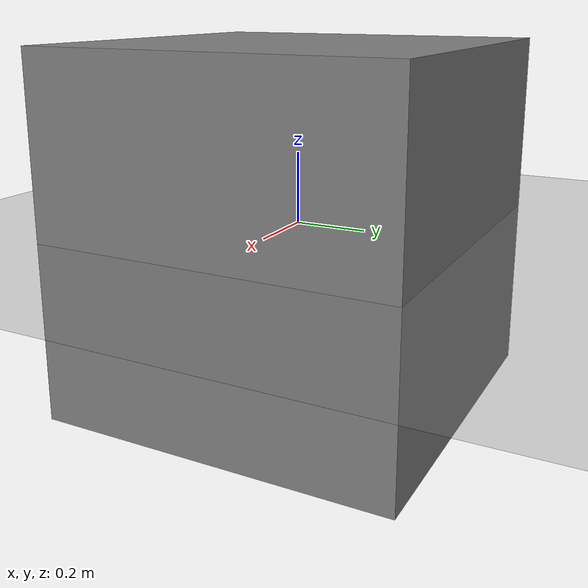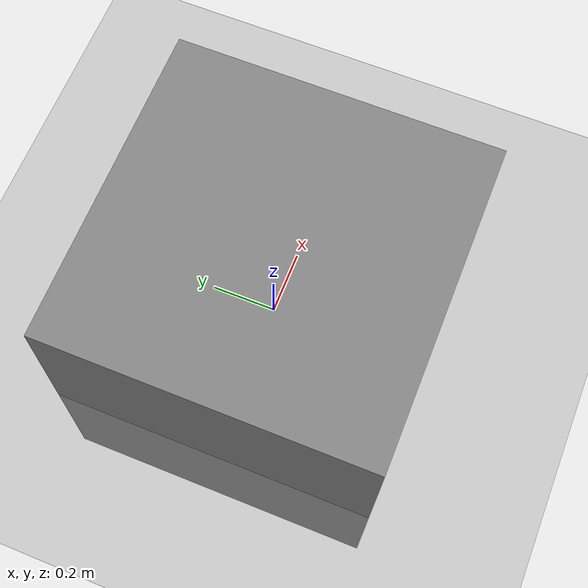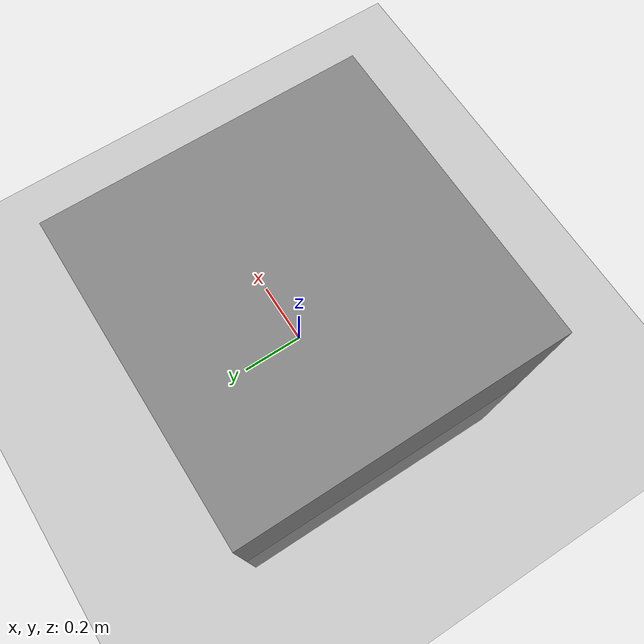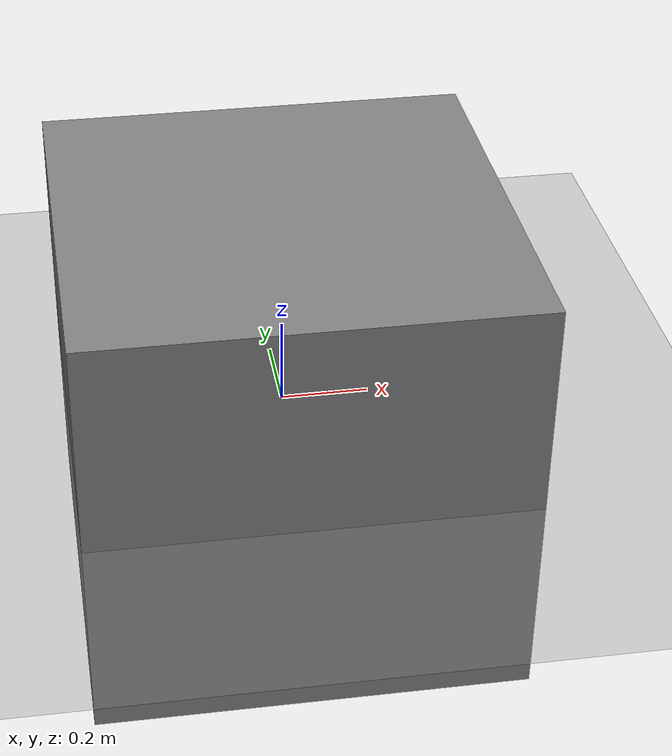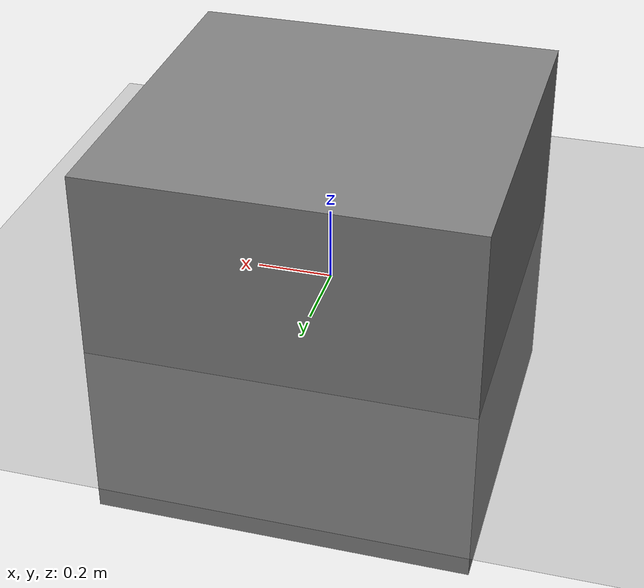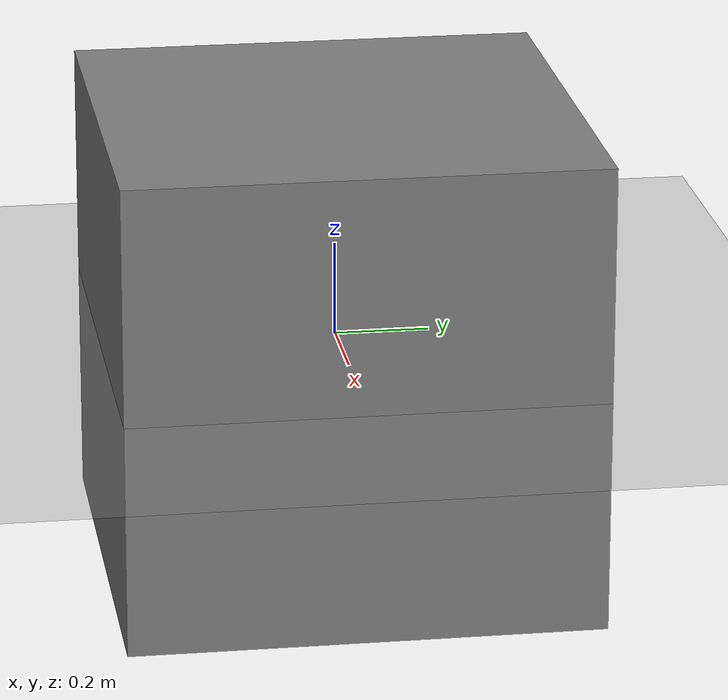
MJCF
<mujoco model="geoms">
    <compiler inertiagrouprange="2 3"/>
    <default>
        <geom density="1000"/>
    </default>
    <asset>
        <mesh name="box_mesh" file="assets/box.obj"/>
        <mesh name="box_mesh_collison" file="assets/box.obj" inertia="convex" maxhullvert="100"/>
        <mesh name="box_mesh_collision_partial" file="assets/box.obj" inertia="exact"/>
        <mesh name="box_mesh_collision_shell" file="assets/box.obj" inertia="shell"/>
        <mesh name="box_mesh_collision_default" file="assets/box.obj" inertia="legacy" maxhullvert="-1"/>
    </asset>
    <worldbody>
        <geom type="plane" size="10 10 0.1"/>
        <body name="geom_body">
            <!-- Basics -->
            <geom type="sphere" size="0.1"/>
            <geom type="cylinder" size="0.1 0.2"/>
            <geom type="box" size="0.1 0.1 0.1"/>
            <geom type="capsule" size="0.1 0.2"/>
            <geom type="mesh" mesh="box_mesh"/>
            <!-- Physics -->
            <geom name="default_collider" type="sphere" size="0.1" contype="1" conaffinity="1"/>
            <geom name="visual" type="sphere" size="0.1" contype="0" conaffinity="0" group="1" rgba="1 0 0 0.5"/>
            <geom name="visual_with_mass" type="sphere" size="0.1" contype="0" conaffinity="0" group="2" mass="5.0"/>
            <geom name="visual_with_density" type="sphere" size="0.1" contype="0" conaffinity="0" group="2" density="2000"/>
            <geom name="visual_in_range_no_mass" type="sphere" size="0.1" contype="0" conaffinity="0" group="2"/>
            <geom name="guide_visual" type="sphere" size="0.1" contype="0" conaffinity="0" group="3"/>
            <geom name="guide_mesh_collider" type="mesh" mesh="box_mesh" group="3"/>
            <geom name="explicit_mass" type="box" size="0.1 0.1 0.1" mass="10.0"/>
            <geom name="explicit_density" type="box" size="0.1 0.1 0.1" density="3000"/>
            <geom name="mass_and_density" type="capsule" size="0.1 0.2" mass="15.0" density="4000"/>
            <geom name="shell_inertia" type="capsule" size="0.1 0.2" shellinertia="true"/>
            <geom name="all_collision_properties" type="box" size="0.1 0.1 0.1" group="1" condim="4" gap="0.02" margin="0.03" priority="2" shellinertia="true" solimp="0.95 0.99 0.001" solmix="0.9" solref="0.05 1"/>
            <geom name="all_mesh_collision_properties" type="mesh" mesh="box_mesh_collison" group="1" condim="4" gap="0.02" margin="0.01" priority="2" solimp="0.95 0.99 0.001" solmix="0.9" solref="0.04 1"/>
            <geom name="partial_mesh_collision_properties" type="mesh" mesh="box_mesh_collision_partial" condim="4" gap="0.02"/>
            <geom name="default_mesh_collision_properties" type="mesh" mesh="box_mesh_collision_default" group="0"/>
            <geom name="shell_mesh_collision_properties" type="mesh" mesh="box_mesh_collision_shell"/>
        </body>
    </worldbody>
</mujoco>
